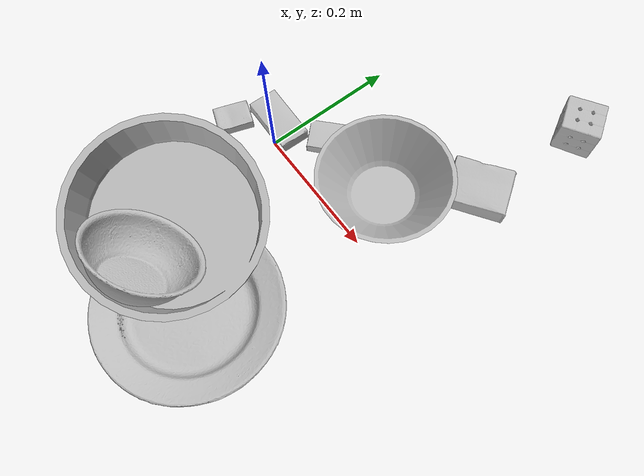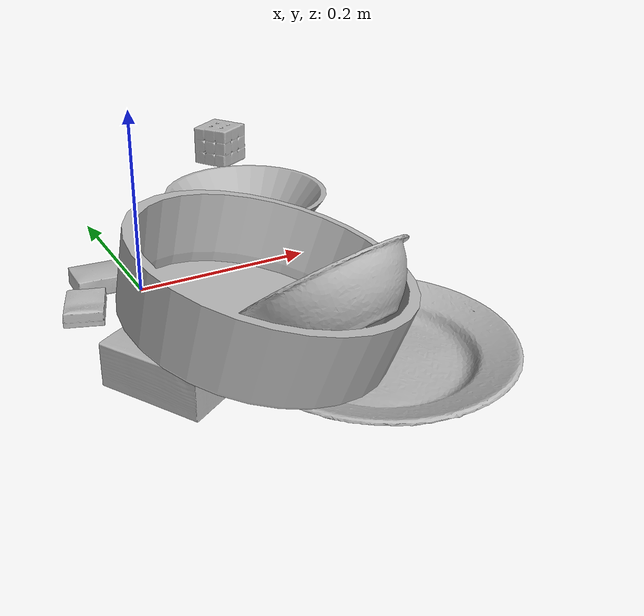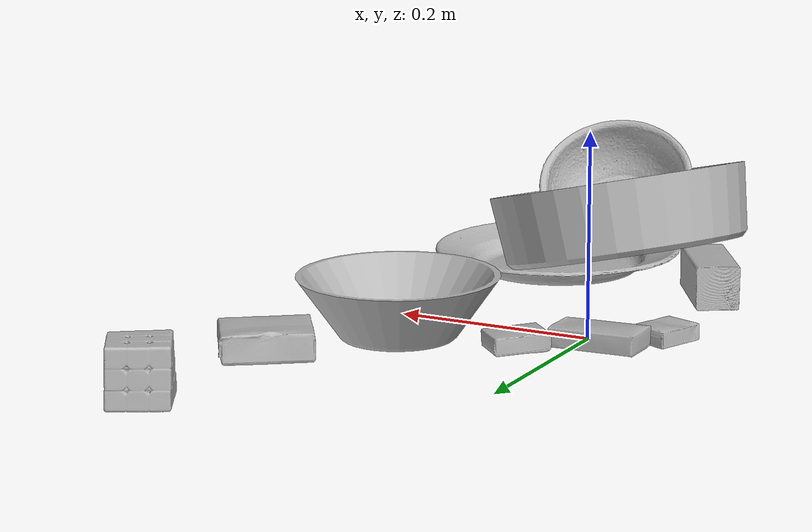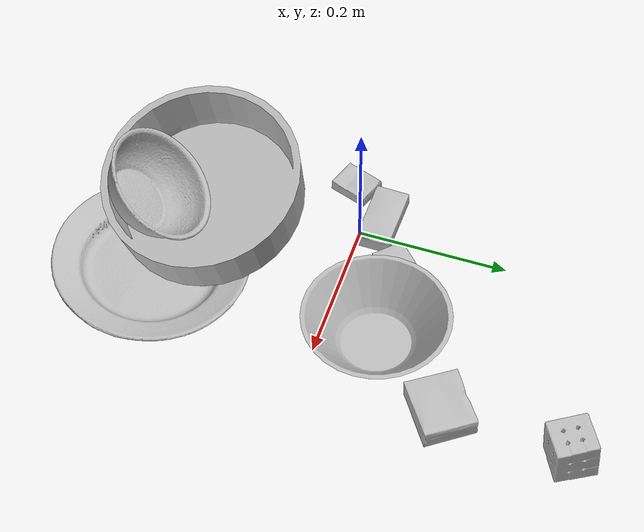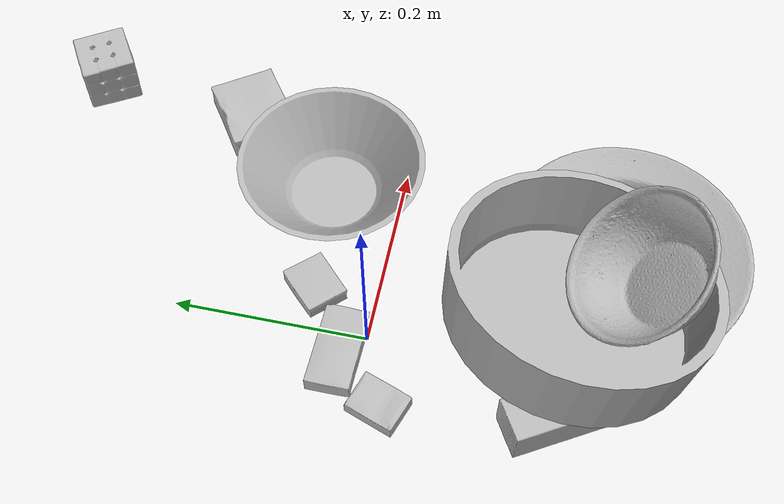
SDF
<sdf version="1.4">
  <world name="default">
    <light name="light1" type="point">
      <pose>0 0 1 0 0 0</pose>
      <diffuse>3 3 3 1</diffuse>
      <specular>3 3 3 1</specular>
    </light>
    <light name="light2" type="point">
      <pose>0 0.5 2 0 0 0</pose>
      <diffuse>1 1 1 1</diffuse>
      <specular>1 1 1 1</specular>
    </light>
    <light name="light3" type="point">
      <pose>0 0.5 2 0 0 0</pose>
      <diffuse>3 3 3 1</diffuse>
      <specular>3 3 3 1</specular>
    </light>
    <scene>
      <ambient>0.7 0.7 0.7</ambient>
    </scene>
    <model name="box1">
      <link name="link_box1">
        <collision name="default">
          <geometry>
            <mesh>
              <uri>model://gelatin_box/collision_meshes/collision.obj</uri>
              <scale>1.0 1.0 1.0</scale>
            </mesh>
          </geometry>
          <surface>
            <friction>
              <ode>
                <mu>0.5</mu>
                <mu2>0.5</mu2>
              </ode>
            </friction>
          <contact>
        <ode>
            <max_vel>0</max_vel>
            <min_depth>0.0001</min_depth>
            <kp>1e8</kp>
        </ode>
    </contact></surface>
        </collision>
        <visual name="default">
          <geometry>
            <mesh>
              <uri>model://gelatin_box/visual_meshes/visual.dae</uri>
              <scale>1.0 1.0 1.0</scale>
            </mesh>
          </geometry>
        </visual>
        <inertial>
          <mass>0.24885821342468262</mass>
          <pose>0.0004319618456065655 0.00011156872642459348 -0.0003640321083366871 -0.0010503721884538221 -0.004755817759936981 0.016440553883063976</pose>
          <inertia>
            <ixx>0.0001756736</ixx>
            <iyy>0.00012548274</iyy>
            <izz>0.00026741438</izz>
            <ixy>0</ixy>
            <ixz>0</ixz>
            <iyz>0</iyz>
          </inertia>
        </inertial>
      </link>
      <pose>0.24397684633731842 0.18487243354320526 0.01516831573098898 0.005597453763155933 -0.007304554633863939 2.170950366505453</pose>
    </model>
    <model name="box11">
      <link name="link_box11">
        <collision name="default">
          <geometry>
            <mesh>
              <uri>model://pudding_box/collision_meshes/collision.obj</uri>
              <scale>0.5 0.5 0.5</scale>
            </mesh>
          </geometry>
          <surface>
            <friction>
              <ode>
                <mu>0.5</mu>
                <mu2>0.5</mu2>
              </ode>
            </friction>
          <contact>
        <ode>
            <max_vel>0</max_vel>
            <min_depth>0.0001</min_depth>
            <kp>1e8</kp>
        </ode>
    </contact></surface>
        </collision>
        <visual name="default">
          <geometry>
            <mesh>
              <uri>model://pudding_box/visual_meshes/visual.dae</uri>
              <scale>0.5 0.5 0.5</scale>
            </mesh>
          </geometry>
        </visual>
        <inertial>
          <mass>0.031047143042087555</mass>
          <pose>0.00024474109522998333 0.00040339428232982755 -0.0002594413817860186 0.005213102716306955 -0.006603798272123425 0.020079828883677098</pose>
          <inertia>
            <ixx>8.774299e-06</ixx>
            <iyy>5.903411e-06</iyy>
            <izz>1.2957546e-05</izz>
            <ixy>0</ixy>
            <ixz>0</ixz>
            <iyz>0</iyz>
          </inertia>
        </inertial>
      </link>
      <pose>0.04504850134253502 0.06431472301483154 0.009862899780273438 0.0223484129286132 -0.011391773759919753 2.3334217026029496</pose>
    </model>
    <model name="box2">
      <link name="link_box2">
        <collision name="default">
          <geometry>
            <mesh>
              <uri>model://rubiks_cube/collision_meshes/collision.obj</uri>
              <scale>1.0 1.0 1.0</scale>
            </mesh>
          </geometry>
          <surface>
            <friction>
              <ode>
                <mu>0.5</mu>
                <mu2>0.5</mu2>
              </ode>
            </friction>
          <contact>
        <ode>
            <max_vel>0</max_vel>
            <min_depth>0.0001</min_depth>
            <kp>1e8</kp>
        </ode>
    </contact></surface>
        </collision>
        <visual name="default">
          <geometry>
            <mesh>
              <uri>model://rubiks_cube/visual_meshes/visual.dae</uri>
              <scale>1.0 1.0 1.0</scale>
            </mesh>
          </geometry>
        </visual>
        <inertial>
          <mass>0.2106715589761734</mass>
          <pose>2.6721041649580002e-05 5.2569666877388954e-05 -7.264316536748083e-06 -0.05467273700930805 -0.09814071961497198 -0.03445608496414611</pose>
          <inertia>
            <ixx>0.0001164102</ixx>
            <iyy>0.000115867326</iyy>
            <izz>0.00011737483</izz>
            <ixy>0</ixy>
            <ixz>0</ixz>
            <iyz>0</iyz>
          </inertia>
        </inertial>
      </link>
      <pose>0.26047468185424805 0.36045050621032715 0.028678972274065018 -2.900398583237693e-06 -7.831182995365585e-07 -1.0109217963755812</pose>
    </model>
    <model name="box21">
      <link name="link_box21">
        <collision name="default">
          <geometry>
            <mesh>
              <uri>model://wood_block/collision_meshes/collision.obj</uri>
              <scale>0.5 0.5 0.5</scale>
            </mesh>
          </geometry>
          <surface>
            <friction>
              <ode>
                <mu>0.5</mu>
                <mu2>0.5</mu2>
              </ode>
            </friction>
          <contact>
        <ode>
            <max_vel>0</max_vel>
            <min_depth>0.0001</min_depth>
            <kp>1e8</kp>
        </ode>
    </contact></surface>
        </collision>
        <visual name="default">
          <geometry>
            <mesh>
              <uri>model://wood_block/visual_meshes/visual.dae</uri>
              <scale>0.5 0.5 0.5</scale>
            </mesh>
          </geometry>
        </visual>
        <inertial>
          <mass>0.146076962351799</mass>
          <pose>-2.9066577553749084e-06 -0.000285404734313488 0.00013204291462898254 -0.052208177866913126 -0.0051926955252411455 -0.006861378006552687</pose>
          <inertia>
            <ixx>4.8868267e-05</ixx>
            <iyy>0.00015437487</iyy>
            <izz>0.00015379742</izz>
            <ixy>0</ixy>
            <ixz>0</ixz>
            <iyz>0</iyz>
          </inertia>
        </inertial>
      </link>
      <pose>-0.048495352268218994 -0.19425834715366364 0.022861560806632042 -4.139093675560338e-05 -0.0008178416734292079 2.1054848829319024</pose>
    </model>
    <model name="box3">
      <link name="link_box3">
        <collision name="default">
          <geometry>
            <mesh>
              <uri>model://cracker_box/collision_meshes/collision.obj</uri>
              <scale>0.25 0.25 0.25</scale>
            </mesh>
          </geometry>
          <surface>
            <friction>
              <ode>
                <mu>0.5</mu>
                <mu2>0.5</mu2>
              </ode>
            </friction>
          <contact>
        <ode>
            <max_vel>0</max_vel>
            <min_depth>0.0001</min_depth>
            <kp>1e8</kp>
        </ode>
    </contact></surface>
        </collision>
        <visual name="default">
          <geometry>
            <mesh>
              <uri>model://cracker_box/visual_meshes/visual.dae</uri>
              <scale>0.25 0.25 0.25</scale>
            </mesh>
          </geometry>
        </visual>
        <inertial>
          <mass>0.0398951955139637</mass>
          <pose>0.0002366032567806542 6.358561950037256e-05 -0.0004257383698131889 -0.00031620768741309833 -0.011106487737478729 0.0025467957005107203</pose>
          <inertia>
            <ixx>6.342223e-06</ixx>
            <iyy>1.0472255e-05</iyy>
            <izz>1.494487e-05</izz>
            <ixy>0</ixy>
            <ixz>0</ixz>
            <iyz>0</iyz>
          </inertia>
        </inertial>
      </link>
      <pose>-0.0684705302119255 -0.02647198922932148 0.00909603200852871 -0.01404961634375777 -0.005016616649293411 1.2256108060745246</pose>
    </model>
    <model name="box31">
      <link name="link_box31">
        <collision name="default">
          <geometry>
            <mesh>
              <uri>model://sugar_box/collision_meshes/collision.obj</uri>
              <scale>0.5 0.5 0.5</scale>
            </mesh>
          </geometry>
          <surface>
            <friction>
              <ode>
                <mu>0.5</mu>
                <mu2>0.5</mu2>
              </ode>
            </friction>
          <contact>
        <ode>
            <max_vel>0</max_vel>
            <min_depth>0.0001</min_depth>
            <kp>1e8</kp>
        </ode>
    </contact></surface>
        </collision>
        <visual name="default">
          <geometry>
            <mesh>
              <uri>model://sugar_box/visual_meshes/visual.dae</uri>
              <scale>0.5 0.5 0.5</scale>
            </mesh>
          </geometry>
        </visual>
        <inertial>
          <mass>0.051384337246418</mass>
          <pose>0.0005171863595023751 1.924554817378521e-05 -0.00018182402709499002 -0.00040462574757428057 0.0010506634050244472 0.0026153787892360275</pose>
          <inertia>
            <ixx>1.070332e-05</ixx>
            <iyy>3.4595334e-05</iyy>
            <izz>4.1414743e-05</izz>
            <ixy>0</ixy>
            <ixz>0</ixz>
            <iyz>0</iyz>
          </inertia>
        </inertial>
      </link>
      <pose>-0.021870886906981468 0.024105112999677658 0.011399306356906891 0.0007745500217832741 -0.02343299821733838 3.117539897153641</pose>
    </model>
    <model name="plate1">
      <link name="link_plate1">
        <collision name="default">
          <geometry>
            <mesh>
              <uri>model://plate/collision_meshes/collision.obj</uri>
              <scale>1.0 1.0 1.0</scale>
            </mesh>
          </geometry>
          <surface>
            <friction>
              <ode>
                <mu>0.5</mu>
                <mu2>0.5</mu2>
              </ode>
            </friction>
          <contact>
        <ode>
            <max_vel>0</max_vel>
            <min_depth>0.0001</min_depth>
            <kp>1e8</kp>
        </ode>
    </contact></surface>
        </collision>
        <visual name="default">
          <geometry>
            <mesh>
              <uri>model://plate/visual_meshes/visual.dae</uri>
              <scale>1.0 1.0 1.0</scale>
            </mesh>
          </geometry>
        </visual>
        <inertial>
          <mass>0.18845537304878235</mass>
          <pose>-0.0006044640904292464 0.00027825849247165024 -0.0010561994276940823 0.0022188128524267426 -0.0032254640251278745 0.45260123674794867</pose>
          <inertia>
            <ixx>0.0008815983</ixx>
            <iyy>0.00087316614</iyy>
            <izz>0.001724274</izz>
            <ixy>0</ixy>
            <ixz>0</ixz>
            <iyz>0</iyz>
          </inertia>
        </inertial>
      </link>
      <pose>0.1428872048854828 -0.23968099057674408 0.013734381645917892 -3.3154657397691204e-07 8.302002288606778e-05 2.1642612156536924</pose>
    </model>
    <model name="bowl1">
      <link name="link_bowl1">
        <collision name="default">
          <geometry>
            <mesh>
              <uri>model://bowl_a/collision_meshes/collision.obj</uri>
              <scale>1.0 1.0 1.0</scale>
            </mesh>
          </geometry>
          <surface>
            <friction>
              <ode>
                <mu>0.5</mu>
                <mu2>0.5</mu2>
              </ode>
            </friction>
          <contact>
        <ode>
            <max_vel>0</max_vel>
            <min_depth>0.0001</min_depth>
            <kp>1e8</kp>
        </ode>
    </contact></surface>
        </collision>
        <visual name="default">
          <geometry>
            <mesh>
              <uri>model://bowl_a/visual_meshes/visual.dae</uri>
              <scale>1.0 1.0 1.0</scale>
            </mesh>
          </geometry>
        </visual>
        <inertial>
          <mass>0.46761196851730347</mass>
          <pose>0.0002786737459246069 4.731199442176148e-05 -0.0013765295734629035 -0.0009805421566516771 -0.0010938164969012795 -0.19123134440759623</pose>
          <inertia>
            <ixx>0.0013313128</ixx>
            <iyy>0.0013394863</iyy>
            <izz>0.0023677913</izz>
            <ixy>0</ixy>
            <ixz>0</ixz>
            <iyz>0</iyz>
          </inertia>
        </inertial>
      </link>
      <pose>0.1646338403224945 0.07411503791809082 0.030382636934518814 7.841878838275474e-07 9.207303893197297e-06 2.5067110563659325</pose>
    </model>
    <model name="plate2">
      <link name="link_plate2">
        <collision name="default">
          <geometry>
            <mesh>
              <uri>model://pan_tefal/collision_meshes/collision.obj</uri>
              <scale>1.0 1.0 1.0</scale>
            </mesh>
          </geometry>
          <surface>
            <friction>
              <ode>
                <mu>0.5</mu>
                <mu2>0.5</mu2>
              </ode>
            </friction>
          <contact>
        <ode>
            <max_vel>0</max_vel>
            <min_depth>0.0001</min_depth>
            <kp>1e8</kp>
        </ode>
    </contact></surface>
        </collision>
        <visual name="default">
          <geometry>
            <mesh>
              <uri>model://pan_tefal/visual_meshes/visual.dae</uri>
              <scale>1.0 1.0 1.0</scale>
            </mesh>
          </geometry>
        </visual>
        <inertial>
          <mass>0.7360396385192871</mass>
          <pose>-0.00018002057913690805 3.2791922421893105e-05 -0.00851493515074253 0.0008190284364517867 -0.0003301440136962699 -0.3318532577359739</pose>
          <inertia>
            <ixx>0.0050808466</ixx>
            <iyy>0.005113603</iyy>
            <izz>0.00935286</izz>
            <ixy>0</ixy>
            <ixz>0</ixz>
            <iyz>0</iyz>
          </inertia>
        </inertial>
      </link>
      <pose>0.049377672374248505 -0.19517624378204346 0.07586585730314255 -0.08551124532403756 0.2392962879133314 -0.8197146557236288</pose>
    </model>
    <model name="bowl2">
      <link name="link_bowl2">
        <collision name="default">
          <geometry>
            <mesh>
              <uri>model://bowl/collision_meshes/collision.obj</uri>
              <scale>1.0 1.0 1.0</scale>
            </mesh>
          </geometry>
          <surface>
            <friction>
              <ode>
                <mu>0.5</mu>
                <mu2>0.5</mu2>
              </ode>
            </friction>
          <contact>
        <ode>
            <max_vel>0</max_vel>
            <min_depth>0.0001</min_depth>
            <kp>1e8</kp>
        </ode>
    </contact></surface>
        </collision>
        <visual name="default">
          <geometry>
            <mesh>
              <uri>model://bowl/visual_meshes/visual.dae</uri>
              <scale>1.0 1.0 1.0</scale>
            </mesh>
          </geometry>
        </visual>
        <inertial>
          <mass>0.11974068731069565</mass>
          <pose>0.00020445311383809894 -0.0010302052833139896 -0.0008042640401981771 -0.015764214972767723 0.014546668027170537 0.7140316235505751</pose>
          <inertia>
            <ixx>0.00027505384</ixx>
            <iyy>0.000268908</iyy>
            <izz>0.00046273507</izz>
            <ixy>0</ixy>
            <ixz>0</ixz>
            <iyz>0</iyz>
          </inertia>
        </inertial>
      </link>
      <pose>0.08253998309373856 -0.26049044728279114 0.08422985672950745 0.44125620998195847 0.5617382391891208 2.515594869229884</pose>
    </model>
  <physics type="ode">
      <max_contacts>50</max_contacts>
      <ode>
        <solver>
          <type>quick</type>
          <iters>75</iters>
        </solver>
        <constraints>
          <contact_max_correcting_vel>0</contact_max_correcting_vel>
          <contact_surface_layer>0</contact_surface_layer>
        </constraints>
      </ode>
    </physics></world>
</sdf>
